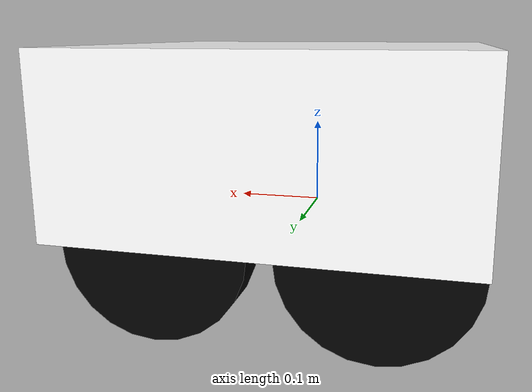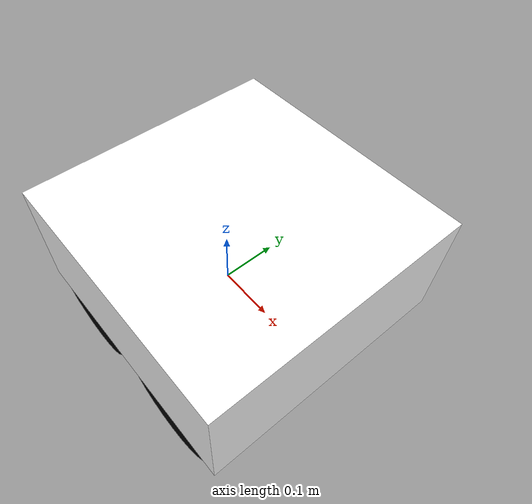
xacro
<?xml version="1.0"?>
<robot xmlns:xacro="http://www.ros.org/wiki/xacro" >
<xacro:include filename="inertial_macros.xacro" />

 <material name="white">
     <color rgba="1 1 1 1" />
 </material>

 <material name="black">
     <color rgba="0 0 0 1"/>
 </material>

 <!-- BASE LINK -->

 <link name="base_link">

 </link>

 <!-- BASE_FOOTPRINT LINK -->
<joint name="base_footprint_joint" type="fixed">
 <parent link="base_link"/>
 <child link="base_footprint"/>
 <origin xyz="0 0 0" rpy="0 0 0"/>
</joint>

<link name="base_footprint">
</link>

 <joint name="chassis_joint" type="fixed">

 <parent link="base_link"/>
 <child link="chassis"/>
 <origin xyz="-0.1 0 0"/>

</joint>

<link name="chassis">
 <visual>
     <origin xyz="0.125 0 0.095" rpy="0 0 0"/>
     <geometry>
         <box size="0.451 0.451 0.2"/>
     </geometry>

     <material name="white"/>
 </visual>

 <collision>
    <origin xyz="0.125 0 0.095" rpy="0 0 0"/>
    <geometry>
        <box size="0.451 0.451 0.2"/>
    </geometry>
</collision>

<xacro:inertial_box mass="200" x="0.451" y="0.451" z="0.2">
      <origin xyz="0.125 0 0.0" rpy="0 0 0"/>
  </xacro:inertial_box>

</link>

<gazebo reference="chassis">
   <material>Gazebo/White</material>
</gazebo>

<!-- LEFT WHEEL01 -->

  <joint name="left_wheel_joint01" type="continuous">
    <parent link="base_link"/>
    <child link="left_wheel01"/>
    <origin xyz="0.125 0.2 0" rpy="-${pi/2} 0 0"/>
    <axis xyz="0 0 1"/>
  </joint>

  <link name="left_wheel01">
<visual>
    <geometry>
        <cylinder length="0.04" radius="0.1" />
    </geometry>
    <material name="black"/>
</visual>

<collision>

    <geometry>
        <cylinder length="0.04" radius="0.1" />
    </geometry>
</collision>

<xacro:inertial_cylinder mass="0.1" length="0.05" radius="0.1">
      <origin xyz="0 0 0" rpy="0 0 0"/>
  </xacro:inertial_cylinder>

</link>

<gazebo reference="left_wheel01">
   <material>Gazebo/Black</material>
</gazebo>

<!-- LEFT WHEEL02 -->

  <joint name="left_wheel_joint02" type="continuous">
    <parent link="base_link"/>
    <child link="left_wheel02"/>
    <origin xyz="-0.1 0.2 0" rpy="-${pi/2} 0 0"/>
    <axis xyz="0 0 1"/>
  </joint>

  <link name="left_wheel02">
<visual>
    <geometry>
        <cylinder length="0.04" radius="0.1" />
    </geometry>
    <material name="black"/>
</visual>

<collision>

    <geometry>
        <cylinder length="0.04" radius="0.1" />
    </geometry>
</collision>

<xacro:inertial_cylinder mass="0.1" length="0.05" radius="0.1">
      <origin xyz="0 0 0" rpy="0 0 0"/>
  </xacro:inertial_cylinder>

</link>

<gazebo reference="left_wheel02">
   <material>Gazebo/Black</material>
</gazebo>

<!-- RIGHT WHEEL01 -->

<joint name="right_wheel_joint01" type="continuous">
<parent link="base_link"/>
<child link="right_wheel01"/>
<origin xyz="0.125 -0.2 0" rpy="${pi/2} 0 0"/>
<axis xyz="0 0 -1"/>
</joint>

<link name="right_wheel01">
<visual>
    <geometry>
        <cylinder length="0.04" radius="0.1" />
    </geometry>
    <material name="black"/>
</visual>

<collision>

    <geometry>
        <cylinder length="0.04" radius="0.1" />
    </geometry>
</collision>

<xacro:inertial_cylinder mass="0.1" length="0.05" radius="0.1">
      <origin xyz="0 0 0" rpy="0 0 0"/>
  </xacro:inertial_cylinder>
</link>

 <gazebo reference="right_wheel01">
   <material>Gazebo/Black</material>
</gazebo>

<!-- RIGHT WHEEL02 -->

<joint name="right_wheel_joint02" type="continuous">
<parent link="base_link"/>
<child link="right_wheel02"/>
<origin xyz="-0.1 -0.2 0" rpy="${pi/2} 0 0"/>
<axis xyz="0 0 -1"/>
</joint>

<link name="right_wheel02">
<visual>
    <geometry>
        <cylinder length="0.04" radius="0.1" />
    </geometry>
    <material name="black"/>
</visual>

<collision>
    <geometry>
        <cylinder length="0.04" radius="0.1" />
    </geometry>
</collision>

<xacro:inertial_cylinder mass="0.1" length="0.05" radius="0.1">
      <origin xyz="0 0 0" rpy="0 0 0"/>
  </xacro:inertial_cylinder>
</link>

<gazebo reference="right_wheel02">
   <material>Gazebo/Black</material>
</gazebo>

</robot>
